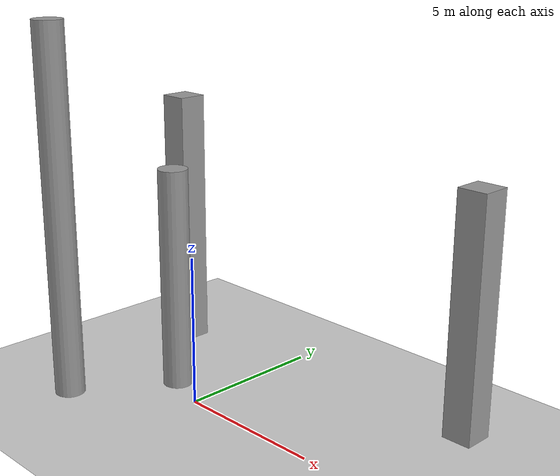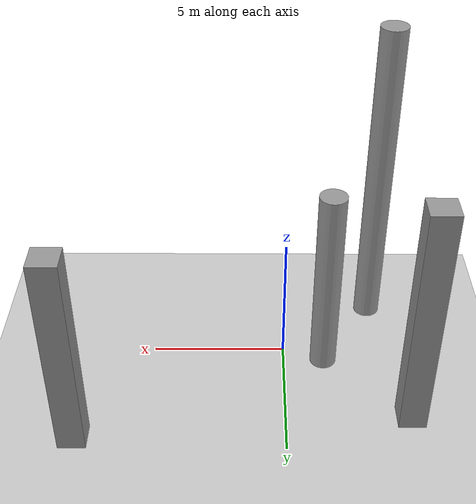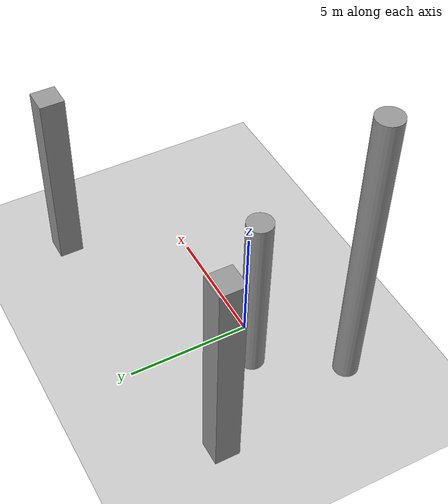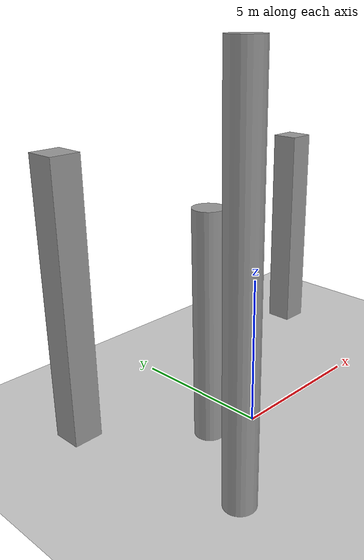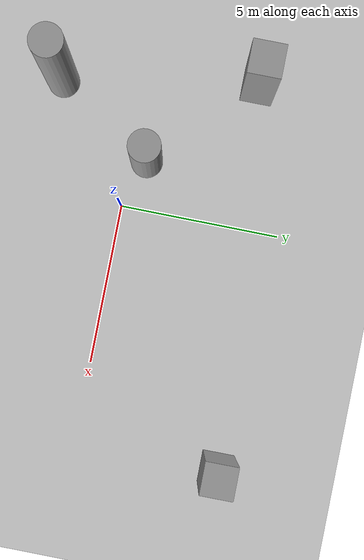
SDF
<sdf version="1.6">
 <world name="default">
  <scene><ambient>0.4 0.4 0.4 1</ambient><background>0.7 0.7 0.7 1</background><shadows>0</shadows></scene>
  <light name="sun" type="directional">
   <cast_shadows>0</cast_shadows>
   <pose>0 0 10 0 -0 0</pose>
   <diffuse>0.8 0.8 0.8 1</diffuse>
   <specular>0.2 0.2 0.2 1</specular>
   <attenuation>
    <range>1000</range>
    <constant>0.9</constant>
    <linear>0.01</linear>
    <quadratic>0.001</quadratic>
   </attenuation>
   <direction>-0.5 0.1 -0.9</direction>
  </light>
  <model name="ground_plane">
   <static>1</static>
   <link name="link">
    <collision name="collision">
     <geometry><plane><normal>0 0 1</normal><size>100 100</size></plane></geometry>
     <surface><friction><ode><mu>100</mu><mu2>50</mu2></ode></friction></surface>
    </collision>
    <visual name="visual">
     <cast_shadows>0</cast_shadows>
     <geometry><plane><normal>0 0 1</normal><size>100 100</size></plane></geometry>
     <material>
      <script><uri>file://media/materials/scripts/gazebo.material</uri><name>Gazebo/Grey</name></script>
     </material>
    </visual>
   </link>
  </model>
  <physics name="default_physics" default="0" type="ode">
   <real_time_update_rate>1000</real_time_update_rate>
   <max_step_size>0.001</max_step_size>
   <real_time_factor>1</real_time_factor>
   <ode>
    <solver>
     <type>quick</type>
     <iters>150</iters>
     <precon_iters>0</precon_iters>
     <sor>1.4</sor>
     <use_dynamic_moi_rescaling>1</use_dynamic_moi_rescaling>
    </solver>
    <constraints>
     <cfm>1e-05</cfm>
     <erp>0.2</erp>
     <contact_max_correcting_vel>2000</contact_max_correcting_vel>
     <contact_surface_layer>0.01</contact_surface_layer>
    </constraints>
   </ode>
  </physics>
  <gravity>0 0 -9.8</gravity>
  <magnetic_field>6e-06 2.3e-05 -4.2e-05</magnetic_field>
  <atmosphere type="adiabatic"/>
  <spherical_coordinates>
   <surface_model>EARTH_WGS84</surface_model>
   <latitude_deg>0</latitude_deg>
   <longitude_deg>0</longitude_deg>
   <elevation>0</elevation>
   <heading_deg>0</heading_deg>
  </spherical_coordinates>
  <model name="unit_cylinder">
   <pose>-3.49918 -2.52529 6.17102 0 0 -0.004358</pose>
   <link name="link">
    <inertial>
     <mass>1</mass>
     <inertia><ixx>0.145833</ixx><ixy>0</ixy><ixz>0</ixz><iyy>0.145833</iyy><iyz>0</iyz><izz>0.125</izz></inertia>
    </inertial>
    <collision name="collision">
     <geometry><cylinder><radius>0.5</radius><length>12.342</length></cylinder></geometry>
    </collision>
    <visual name="visual">
     <geometry><cylinder><radius>0.5</radius><length>12.342</length></cylinder></geometry>
     <material>
      <script><name>Gazebo/Grey</name><uri>file://media/materials/scripts/gazebo.material</uri></script>
     </material>
    </visual>
   </link>
  </model>
  <model name="unit_cylinder_0">
   <pose>-1.5171 0.52701 3.7723 0 0 -0.000424</pose>
   <link name="link">
    <inertial>
     <mass>1</mass>
     <inertia><ixx>0.145833</ixx><ixy>0</ixy><ixz>0</ixz><iyy>0.145833</iyy><iyz>0</iyz><izz>0.125</izz></inertia>
    </inertial>
    <collision name="collision">
     <geometry><cylinder><radius>0.5</radius><length>7.54463</length></cylinder></geometry>
    </collision>
    <visual name="visual">
     <geometry><cylinder><radius>0.5</radius><length>7.54463</length></cylinder></geometry>
     <material>
      <script><name>Gazebo/Grey</name><uri>file://media/materials/scripts/gazebo.material</uri></script>
     </material>
    </visual>
   </link>
  </model>
  <model name="unit_box">
   <pose>7.51566 4.51252 3.98684 0.000148 0 0.003719</pose>
   <link name="link">
    <inertial>
     <mass>1</mass>
     <inertia>
      <ixx>0.166667</ixx>
      <ixy>0</ixy>
      <ixz>0</ixz>
      <iyy>0.166667</iyy>
      <iyz>0</iyz>
      <izz>0.166667</izz>
     </inertia>
    </inertial>
    <collision name="collision"><geometry><box><size>1 1 7.97352</size></box></geometry></collision>
    <visual name="visual">
     <geometry><box><size>1 1 7.97352</size></box></geometry>
     <material>
      <script><name>Gazebo/Grey</name><uri>file://media/materials/scripts/gazebo.material</uri></script>
     </material>
    </visual>
   </link>
  </model>
  <model name="unit_box_0">
   <pose>-4.5047 3.50249 4.57625 1.8e-05 -0 0.002262</pose>
   <link name="link">
    <inertial>
     <mass>1</mass>
     <inertia>
      <ixx>0.166667</ixx>
      <ixy>0</ixy>
      <ixz>0</ixz>
      <iyy>0.166667</iyy>
      <iyz>0</iyz>
      <izz>0.166667</izz>
     </inertia>
    </inertial>
    <collision name="collision"><geometry><box><size>1 1 9.15248</size></box></geometry></collision>
    <visual name="visual">
     <geometry><box><size>1 1 9.15248</size></box></geometry>
     <material>
      <script><name>Gazebo/Grey</name><uri>file://media/materials/scripts/gazebo.material</uri></script>
     </material>
    </visual>
   </link>
  </model>
  <light name="user_spot_light_1" type="spot">
   <pose>-3.50726 7.55586 1 0 -0 0</pose>
   <diffuse>0.5 0.5 0.5 1</diffuse>
   <specular>0.1 0.1 0.1 1</specular>
   <direction>0 0 -1</direction>
   <attenuation>
    <range>20</range>
    <constant>0.5</constant>
    <linear>0.01</linear>
    <quadratic>0.001</quadratic>
   </attenuation>
   <cast_shadows>0</cast_shadows>
   <spot><inner_angle>0.6</inner_angle><outer_angle>1</outer_angle><falloff>1</falloff></spot>
  </light>
  <light name="user_spot_light_2" type="spot">
   <pose>3.52273 7.56703 1 0 -0 0</pose>
   <diffuse>0.5 0.5 0.5 1</diffuse>
   <specular>0.1 0.1 0.1 1</specular>
   <direction>0 0 -1</direction>
   <attenuation>
    <range>20</range>
    <constant>0.5</constant>
    <linear>0.01</linear>
    <quadratic>0.001</quadratic>
   </attenuation>
   <cast_shadows>0</cast_shadows>
   <spot><inner_angle>0.6</inner_angle><outer_angle>1</outer_angle><falloff>1</falloff></spot>
  </light>
 </world>
</sdf>
